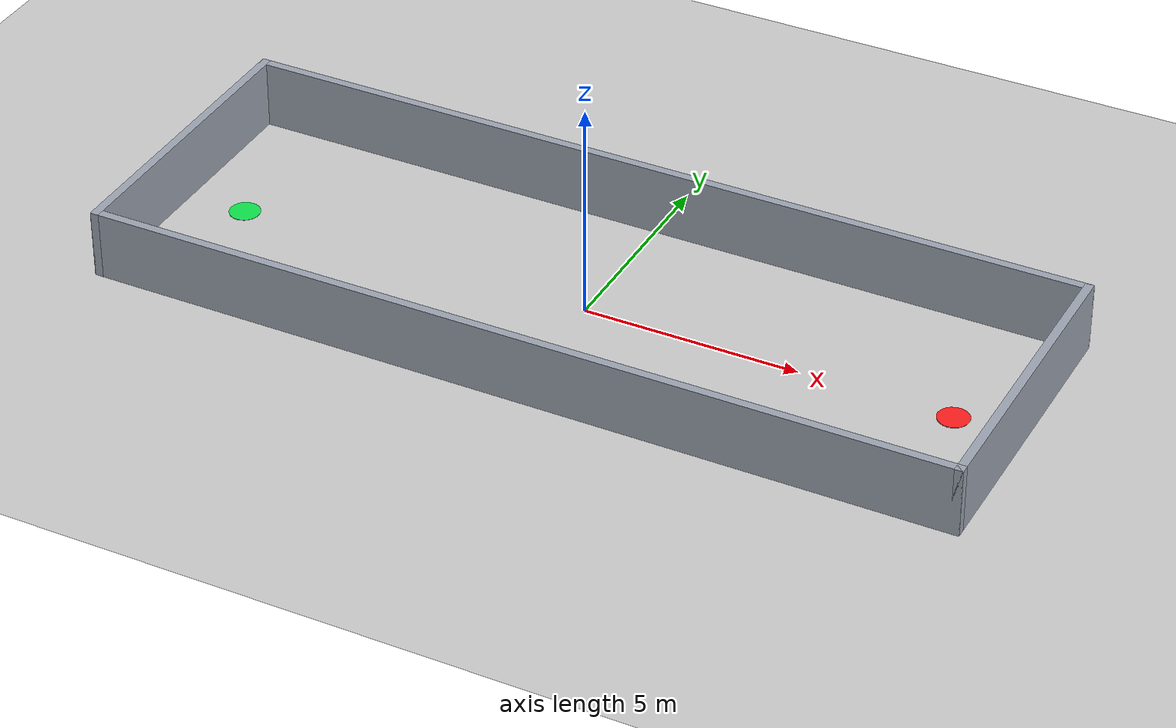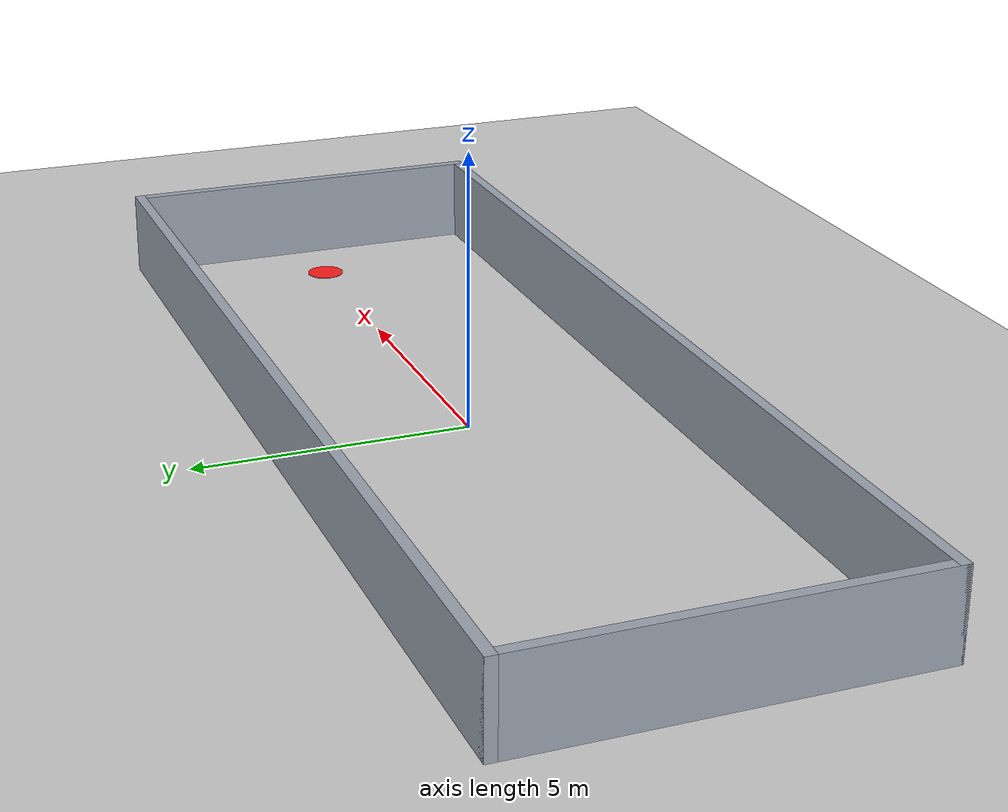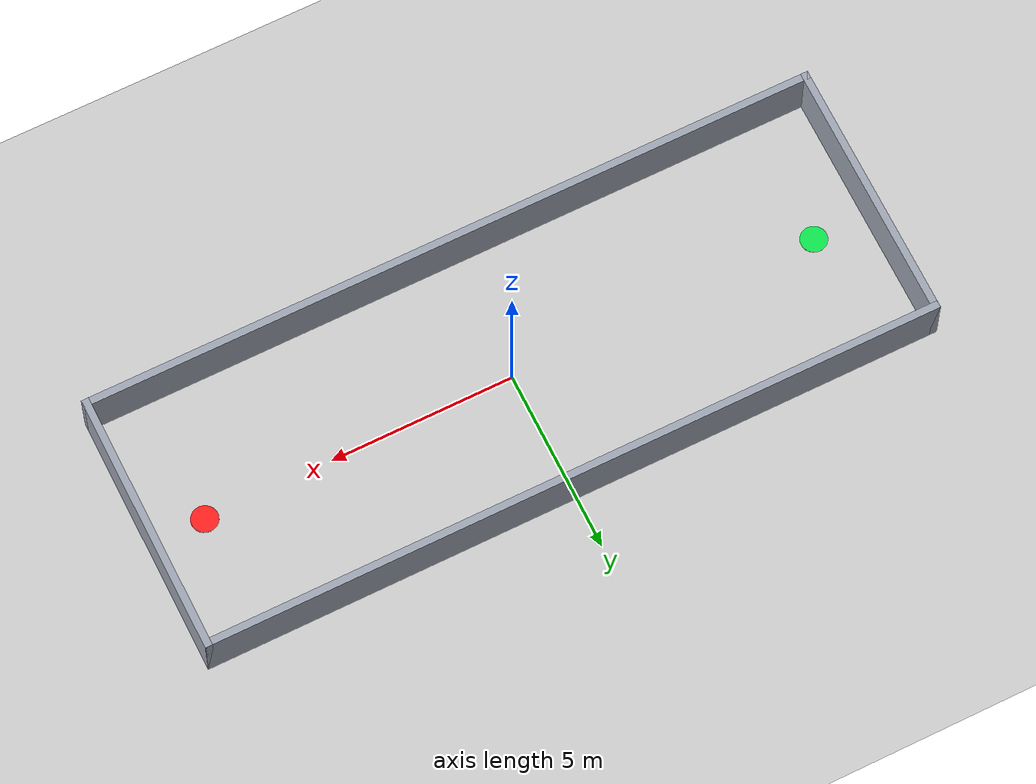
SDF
<?xml version="1.0"?>
<sdf version="1.6">
  <world name="gate5_open_corridor">
    <include>
      <uri>model://ground_plane</uri>
    </include>
    <include>
      <uri>model://sun</uri>
    </include>

    <scene>
      <ambient>0.65 0.65 0.65 1</ambient>
      <background>0.82 0.86 0.90 1</background>
      <shadows>true</shadows>
      <grid>false</grid>
    </scene>

    <physics type="ode">
      <real_time_update_rate>1000.0</real_time_update_rate>
      <max_step_size>0.001</max_step_size>
      <real_time_factor>1</real_time_factor>
      <ode>
        <solver>
          <type>quick</type>
          <iters>150</iters>
          <sor>1.4</sor>
        </solver>
        <constraints>
          <cfm>0.00001</cfm>
          <erp>0.2</erp>
          <contact_max_correcting_vel>2000</contact_max_correcting_vel>
          <contact_surface_layer>0.01</contact_surface_layer>
        </constraints>
      </ode>
    </physics>

    <!-- Observation-only Gazebo state source used by the Gate 5 evidence
         collector. Navigation still uses RGB-D, RTAB-Map and odometry. -->
    <plugin name="gazebo_ros_state" filename="libgazebo_ros_state.so">
      <ros>
        <namespace>/gazebo</namespace>
        <remapping>model_states:=model_states</remapping>
      </ros>
      <update_rate>30.0</update_rate>
    </plugin>

    <model name="wall_north">
      <static>true</static>
      <pose>0 3.5 0.8 0 0 0</pose>
      <link name="link">
        <collision name="collision"><geometry><box><size>20.2 0.2 1.6</size></box></geometry></collision>
        <visual name="visual"><geometry><box><size>20.2 0.2 1.6</size></box></geometry>
          <material><ambient>0.55 0.58 0.62 1</ambient><diffuse>0.62 0.65 0.70 1</diffuse></material></visual>
      </link>
    </model>
    <model name="wall_south">
      <static>true</static>
      <pose>0 -3.5 0.8 0 0 0</pose>
      <link name="link">
        <collision name="collision"><geometry><box><size>20.2 0.2 1.6</size></box></geometry></collision>
        <visual name="visual"><geometry><box><size>20.2 0.2 1.6</size></box></geometry>
          <material><ambient>0.55 0.58 0.62 1</ambient><diffuse>0.62 0.65 0.70 1</diffuse></material></visual>
      </link>
    </model>
    <model name="wall_east">
      <static>true</static>
      <pose>10.0 0 0.8 0 0 0</pose>
      <link name="link">
        <collision name="collision"><geometry><box><size>0.2 7.2 1.6</size></box></geometry></collision>
        <visual name="visual"><geometry><box><size>0.2 7.2 1.6</size></box></geometry>
          <material><ambient>0.55 0.58 0.62 1</ambient><diffuse>0.62 0.65 0.70 1</diffuse></material></visual>
      </link>
    </model>
    <model name="wall_west">
      <static>true</static>
      <pose>-10.0 0 0.8 0 0 0</pose>
      <link name="link">
        <collision name="collision"><geometry><box><size>0.2 7.2 1.6</size></box></geometry></collision>
        <visual name="visual"><geometry><box><size>0.2 7.2 1.6</size></box></geometry>
          <material><ambient>0.55 0.58 0.62 1</ambient><diffuse>0.62 0.65 0.70 1</diffuse></material></visual>
      </link>
    </model>

    <!-- Non-colliding flat markers make the start and goal explicit in
         Gazebo screenshots without changing the free-space geometry. -->
    <model name="start_marker">
      <static>true</static><pose>-8.5 0.0 0.006 0 0 0</pose>
      <link name="link"><visual name="visual"><geometry><cylinder><radius>0.36</radius><length>0.012</length></cylinder></geometry>
        <material><ambient>0.05 0.75 0.25 1</ambient><diffuse>0.05 0.90 0.30 1</diffuse></material></visual></link>
    </model>
    <model name="goal_marker">
      <static>true</static><pose>8.5 0.0 0.007 0 0 0</pose>
      <link name="link"><visual name="visual"><geometry><cylinder><radius>0.36</radius><length>0.014</length></cylinder></geometry>
        <material><ambient>0.90 0.08 0.08 1</ambient><diffuse>1.0 0.12 0.12 1</diffuse></material></visual></link>
    </model>

    <gui fullscreen="0">
      <camera name="user_camera">
        <pose>0 0 14.0 0 1.5708 0</pose>
        <view_controller>orbit</view_controller>
        <projection_type>perspective</projection_type>
      </camera>
    </gui>
  </world>
</sdf>
